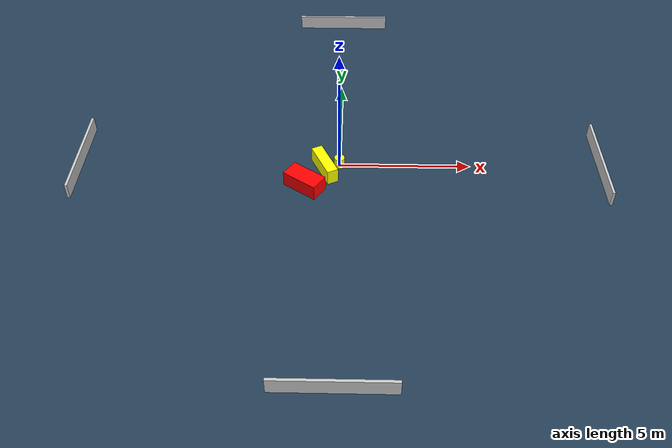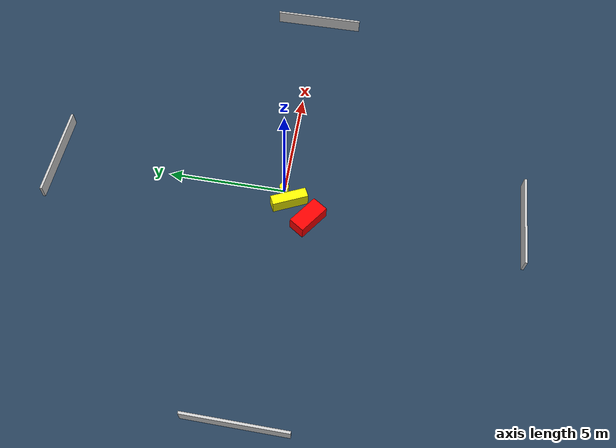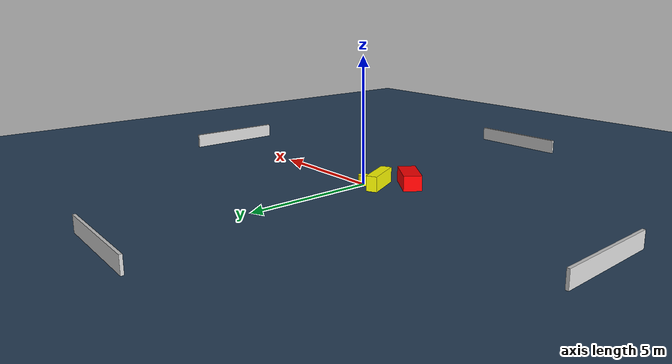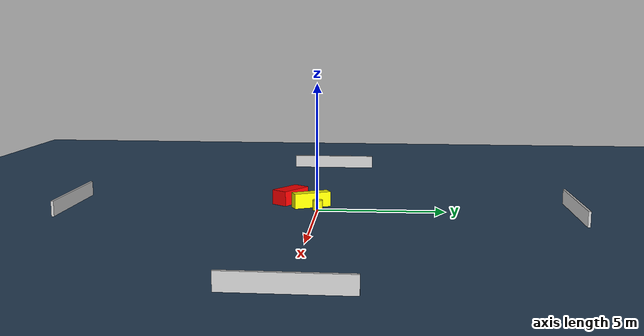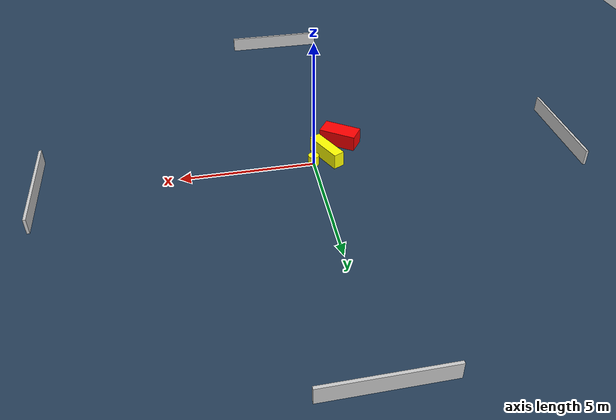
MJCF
<?xml version="1.0" ?>
<mujoco model="generated_environment">
  <option timestep="0.01" integrator="RK4" cone="elliptic"/>
  <default>
    <geom density="1"/>
  </default>
  <asset>
    <texture builtin="gradient" height="3072" name="skybox" rgb1="0.3 0.5 0.7" rgb2="0 0 0" type="skybox" width="512"/>
    <texture builtin="checker" height="300" name="groundplane" rgb1="0.2 0.3 0.4" rgb2="0.1 0.2 0.3" type="2d" width="300"/>
    <material name="groundplane" reflectance="0.2" texrepeat="5 5" texture="groundplane"/>
  </asset>
  <worldbody>
    <light dir="0 0 -1" directional="true" pos="0 0 1.5"/>
    <geom condim="3" friction="0.5 0.005 0.001" material="groundplane" name="floor" pos="0 0 0" size="0 0 0.05" type="plane"/>
    <body name="walls">
      <geom name="wall_1" condim="4" pos="-10.0 0.0 0.3" rgba="0.800000011920929 0.800000011920929 0.800000011920929 1.0" size="0.05 2.0 0.3" type="box"/>
      <geom name="wall_2" condim="4" pos="10.0 0.0 0.3" rgba="0.800000011920929 0.800000011920929 0.800000011920929 1.0" size="0.05 2.0 0.3" type="box"/>
      <geom name="wall_3" condim="4" pos="0.0 -10.0 0.3" rgba="0.800000011920929 0.800000011920929 0.800000011920929 1.0" size="2.0 0.05 0.3" type="box"/>
      <geom name="wall_4" condim="4" pos="0.0 10.0 0.3" rgba="0.800000011920929 0.800000011920929 0.800000011920929 1.0" size="2.0 0.05 0.3" type="box"/>
    </body>
    <body name="robot">
      <joint name="joint_x" type="slide" pos="0 0 0" axis="1 0 0"/>
      <joint name="joint_y" type="slide" pos="0 0 0" axis="0 1 0"/>
      <geom name="robot" type="cylinder" pos="0.0 0.0 0.2" size="0.2 0.2 0.0" mass="5.0" friction="1.0 0.005 0.0001" condim="4" rgba="1.0 1.0 0.0 1.0"/>
    </body>
    <body name="obstacle_1_movable">
      <geom name="obstacle_1_movable" condim="4" pos="-0.5630562090437196 -0.3096773151091282 0.3" euler="0 0 115.59528082087085" friction="0.0 0.005 0.001" rgba="1.0 1.0 0.0 1.0" size="0.7604475542240725 0.2156716547959986 0.3" type="box" mass="0.1"/>
      <joint type="free"/>
    </body>
    <body name="obstacle_2_static">
      <geom name="obstacle_2_static" condim="4" pos="-1.2905204449085046 -1.2326120103287177 0.3" euler="0 0 325.26375722060044" friction="0.0 0.005 0.001" rgba="1.0 0.0 0.0 1.0" size="0.7158367504866321 0.355164918679582 0.3" type="box"/>
    </body>
  </worldbody>
  <actuator>
    <motor name="actuator_x" joint="joint_x" gear="1" ctrlrange="-1 1"/>
    <motor name="actuator_y" joint="joint_y" gear="1" ctrlrange="-1 1"/>
  </actuator>
</mujoco>
